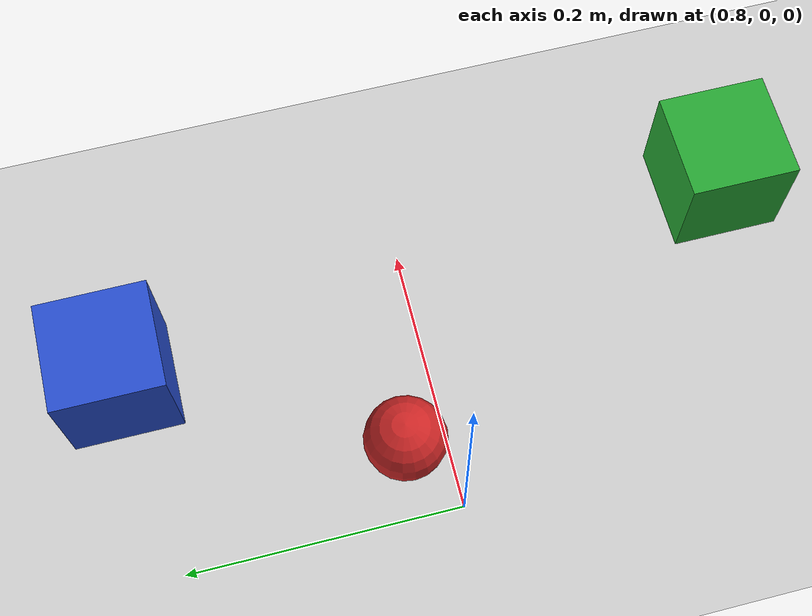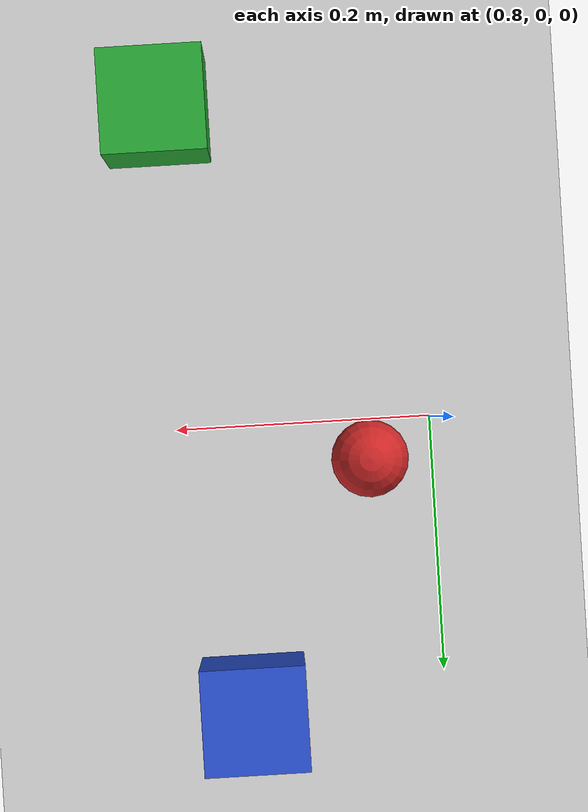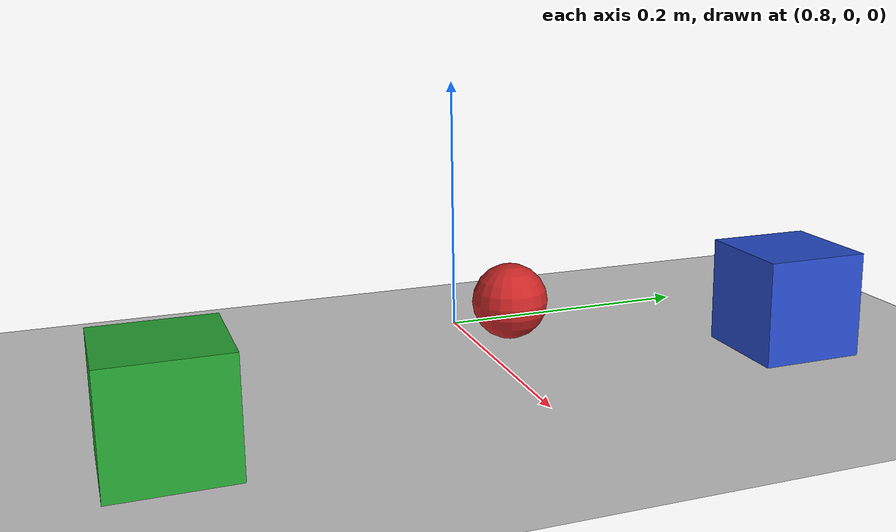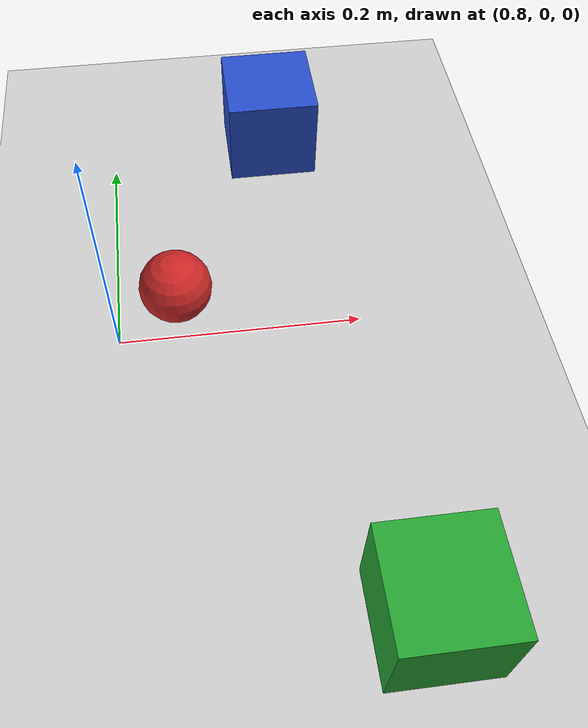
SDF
<?xml version="1.0"?>
<sdf version="1.6">
  <world name="default">
    <include>
      <uri>model://sun</uri>
    </include>
    <include>
      <uri>model://ground_plane</uri>
    </include>

    <model name="red_ball">
      <static>true</static>
      <pose>0.85 0.03 0.03 0 0 0</pose>
      <link name="link">
        <collision name="collision">
          <geometry><sphere><radius>0.03</radius></sphere></geometry>
        </collision>
        <visual name="visual">
          <geometry><sphere><radius>0.03</radius></sphere></geometry>
          <material>
            <script>
              <uri>file://media/materials/scripts/gazebo.material</uri>
              <name>Gazebo/Red</name>
            </script>
          </material>
        </visual>
      </link>
    </model>

    <model name="blue_box">
      <static>true</static>
      <pose>0.95 0.22 0.04 0 0 0</pose>
      <link name="link">
        <collision name="collision">
          <geometry><box><size>0.08 0.08 0.08</size></box></geometry>
        </collision>
        <visual name="visual">
          <geometry><box><size>0.08 0.08 0.08</size></box></geometry>
          <material>
            <script>
              <uri>file://media/materials/scripts/gazebo.material</uri>
              <name>Gazebo/Blue</name>
            </script>
          </material>
        </visual>
      </link>
    </model>

    <model name="green_box">
      <static>true</static>
      <pose>1.0 -0.25 0.04 0 0 0</pose>
      <link name="link">
        <collision name="collision">
          <geometry><box><size>0.08 0.08 0.08</size></box></geometry>
        </collision>
        <visual name="visual">
          <geometry><box><size>0.08 0.08 0.08</size></box></geometry>
          <material>
            <script>
              <uri>file://media/materials/scripts/gazebo.material</uri>
              <name>Gazebo/Green</name>
            </script>
          </material>
        </visual>
      </link>
    </model>
  </world>
</sdf>
